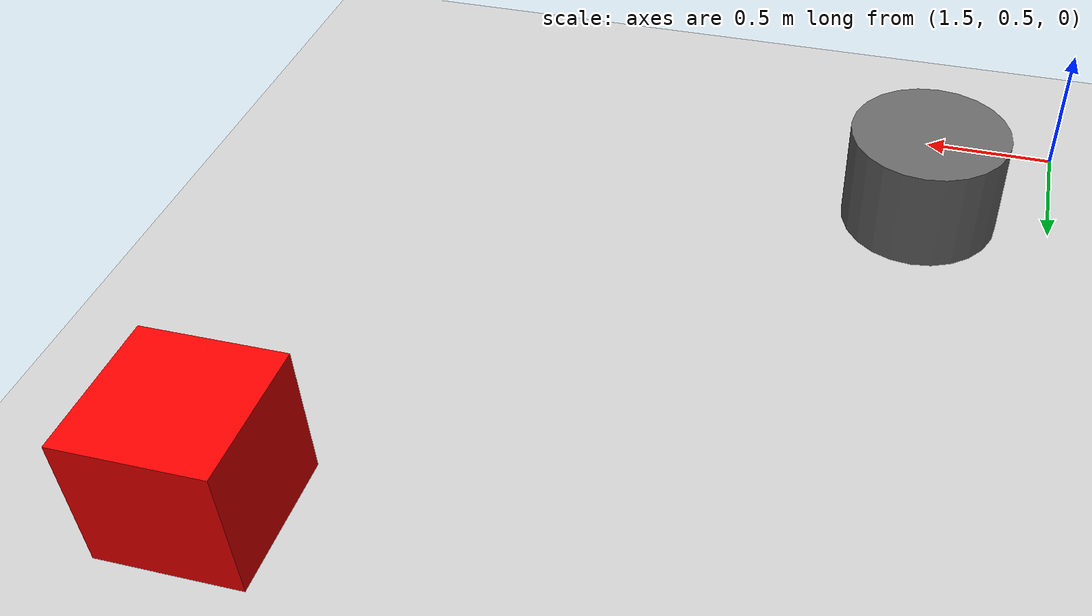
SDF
<?xml version="1.0" ?>
<sdf version="1.6">
  <world name="rough_terrain">
    <!-- Include basic sun and ground plane -->
    <include>
      <uri>model://sun</uri>
    </include>
    <include>
      <uri>model://ground_plane</uri>
    </include>

    <!-- Define Spherical Coordinates Datum -->
    <spherical_coordinates>
      <surface_model>EARTH_WGS84</surface_model>
      <latitude_deg>37.9838</latitude_deg>
      <longitude_deg>23.7275</longitude_deg>
      <elevation>0.0</elevation>
      <heading_deg>0</heading_deg>
    </spherical_coordinates>

    <!-- Static rock obstacle -->
    <model name="rock_obstacle">
      <pose>2.0 1.0 0.2 0 0 0</pose>
      <static>true</static>
      <link name="link">
        <collision name="collision">
          <geometry>
            <cylinder><radius>0.3</radius><length>0.4</length></cylinder>
          </geometry>
        </collision>
        <visual name="visual">
          <geometry>
            <cylinder><radius>0.3</radius><length>0.4</length></cylinder>
          </geometry>
          <material>
            <ambient>0.5 0.5 0.5 1</ambient>
            <diffuse>0.4 0.4 0.4 1</diffuse>
          </material>
        </visual>
      </link>
    </model>

    <!-- The RED Target Object for perception inspection phase -->
    <model name="red_target_box">
      <pose>4.0 3.0 0.25 0 0 0</pose>
      <static>true</static>
      <link name="link">
        <collision name="collision">
          <geometry>
            <box><size>0.5 0.5 0.5</size></box>
          </geometry>
        </collision>
        <visual name="visual">
          <geometry>
            <box><size>0.5 0.5 0.5</size></box>
          </geometry>
          <material>
            <ambient>1.0 0.0 0.0 1</ambient>
            <diffuse>1.0 0.0 0.0 1</diffuse>
          </material>
        </visual>
      </link>
    </model>

  </world>
</sdf>
